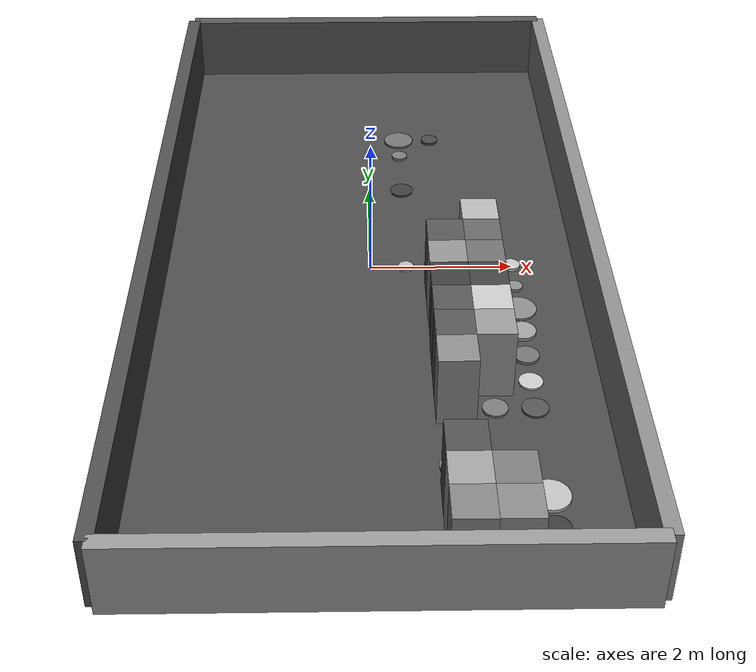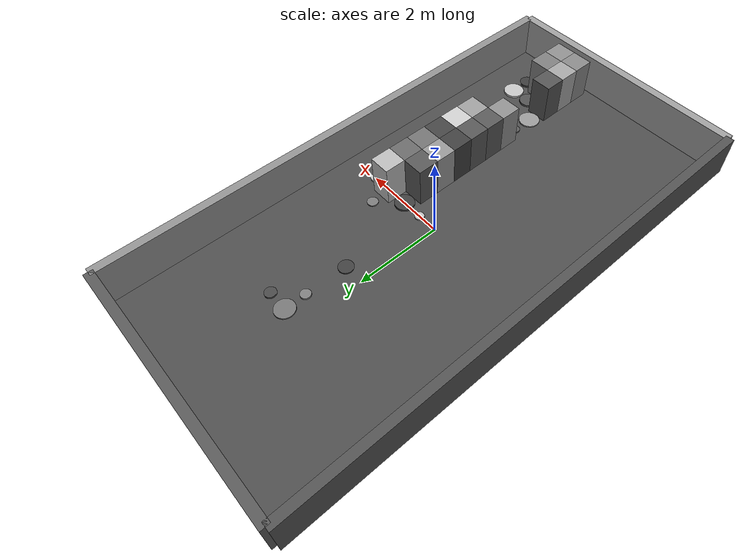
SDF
<sdf version="1.7">
 <world name="default">
  <model name="ground_plane">
   <static>true</static>
   <link name="link">
    <pose>0.0 0.0 -0.05 0 0 0</pose>
    <visual name="visual">
     <material>
      <ambient>0.297790706906946 0.297790706906946 0.297790706906946 1</ambient>
      <diffuse>0.297790706906946 0.297790706906946 0.297790706906946 1</diffuse>
     </material>
     <geometry><box><size>6.0 12.0 0.1</size></box></geometry>
    </visual>
    <collision name="collision">
     <geometry><box><size>6.0 12.0 0.1</size></box></geometry>
     <surface>
      <friction><ode><mu>100</mu><mu2>50.0</mu2><slip1>0.0</slip1><slip2>0.0</slip2></ode></friction>
      <contact><ode><kp>10000.0</kp><kd>100.0</kd></ode></contact>
     </surface>
    </collision>
   </link>
  </model>
  <model name="pn_pillar_40">
   <static>true</static>
   <link name="link">
    <pose>0.5 0.0 0.01634392656753327 0 0 0</pose>
    <visual name="visual">
     <material>
      <ambient>0.7268057595224244 0.7268057595224244 0.7268057595224244 1</ambient>
      <diffuse>0.7268057595224244 0.7268057595224244 0.7268057595224244 1</diffuse>
     </material>
     <geometry>
      <cylinder><radius>0.10868877497412814</radius><length>0.03268785313506654</length></cylinder>
     </geometry>
    </visual>
    <collision name="collision">
     <geometry>
      <cylinder><radius>0.10868877497412814</radius><length>0.03268785313506654</length></cylinder>
     </geometry>
     <surface>
      <friction><ode><mu>100</mu><mu2>50.0</mu2><slip1>0.0</slip1><slip2>0.0</slip2></ode></friction>
      <contact><ode><kp>10000.0</kp><kd>100.0</kd></ode></contact>
     </surface>
    </collision>
   </link>
  </model>
  <model name="pn_pillar_41">
   <static>true</static>
   <link name="link">
    <pose>0.5 2.0 0.013570668150848486 0 0 0</pose>
    <visual name="visual">
     <material>
      <ambient>0.24152751108103018 0.24152751108103018 0.24152751108103018 1</ambient>
      <diffuse>0.24152751108103018 0.24152751108103018 0.24152751108103018 1</diffuse>
     </material>
     <geometry>
      <cylinder><radius>0.17289856949749205</radius><length>0.02714133630169697</length></cylinder>
     </geometry>
    </visual>
    <collision name="collision">
     <geometry>
      <cylinder><radius>0.17289856949749205</radius><length>0.02714133630169697</length></cylinder>
     </geometry>
     <surface>
      <friction><ode><mu>100</mu><mu2>50.0</mu2><slip1>0.0</slip1><slip2>0.0</slip2></ode></friction>
      <contact><ode><kp>10000.0</kp><kd>100.0</kd></ode></contact>
     </surface>
    </collision>
   </link>
  </model>
  <model name="pn_pillar_42">
   <static>true</static>
   <link name="link">
    <pose>0.5 3.0 0.022072930366337347 0 0 0</pose>
    <visual name="visual">
     <material>
      <ambient>0.48516942685923886 0.48516942685923886 0.48516942685923886 1</ambient>
      <diffuse>0.48516942685923886 0.48516942685923886 0.48516942685923886 1</diffuse>
     </material>
     <geometry>
      <cylinder><radius>0.11925871967496443</radius><length>0.044145860732674694</length></cylinder>
     </geometry>
    </visual>
    <collision name="collision">
     <geometry>
      <cylinder><radius>0.11925871967496443</radius><length>0.044145860732674694</length></cylinder>
     </geometry>
     <surface>
      <friction><ode><mu>100</mu><mu2>50.0</mu2><slip1>0.0</slip1><slip2>0.0</slip2></ode></friction>
      <contact><ode><kp>10000.0</kp><kd>100.0</kd></ode></contact>
     </surface>
    </collision>
   </link>
  </model>
  <model name="pn_pillar_43">
   <static>true</static>
   <link name="link">
    <pose>0.5 3.5 0.01581320786175074 0 0 0</pose>
    <visual name="visual">
     <material>
      <ambient>0.4538827641205322 0.4538827641205322 0.4538827641205322 1</ambient>
      <diffuse>0.4538827641205322 0.4538827641205322 0.4538827641205322 1</diffuse>
     </material>
     <geometry>
      <cylinder><radius>0.23086495616278863</radius><length>0.03162641572350148</length></cylinder>
     </geometry>
    </visual>
    <collision name="collision">
     <geometry>
      <cylinder><radius>0.23086495616278863</radius><length>0.03162641572350148</length></cylinder>
     </geometry>
     <surface>
      <friction><ode><mu>100</mu><mu2>50.0</mu2><slip1>0.0</slip1><slip2>0.0</slip2></ode></friction>
      <contact><ode><kp>10000.0</kp><kd>100.0</kd></ode></contact>
     </surface>
    </collision>
   </link>
  </model>
  <model name="pn_wall_44">
   <static>true</static>
   <link name="link">
    <pose>1.0 -5.5 0.5 0 0 0</pose>
    <visual name="visual">
     <material>
      <ambient>0.523577653267675 0.523577653267675 0.523577653267675 1</ambient>
      <diffuse>0.523577653267675 0.523577653267675 0.523577653267675 1</diffuse>
     </material>
     <geometry><box><size>0.5 0.5 1.0</size></box></geometry>
    </visual>
    <collision name="collision">
     <geometry><box><size>0.5 0.5 1.0</size></box></geometry>
     <surface>
      <friction><ode><mu>100</mu><mu2>50.0</mu2><slip1>0.0</slip1><slip2>0.0</slip2></ode></friction>
      <contact><ode><kp>10000.0</kp><kd>100.0</kd></ode></contact>
     </surface>
    </collision>
   </link>
  </model>
  <model name="pn_wall_45">
   <static>true</static>
   <link name="link">
    <pose>1.0 -5.0 0.5 0 0 0</pose>
    <visual name="visual">
     <material>
      <ambient>0.6379586414539857 0.6379586414539857 0.6379586414539857 1</ambient>
      <diffuse>0.6379586414539857 0.6379586414539857 0.6379586414539857 1</diffuse>
     </material>
     <geometry><box><size>0.5 0.5 1.0</size></box></geometry>
    </visual>
    <collision name="collision">
     <geometry><box><size>0.5 0.5 1.0</size></box></geometry>
     <surface>
      <friction><ode><mu>100</mu><mu2>50.0</mu2><slip1>0.0</slip1><slip2>0.0</slip2></ode></friction>
      <contact><ode><kp>10000.0</kp><kd>100.0</kd></ode></contact>
     </surface>
    </collision>
   </link>
  </model>
  <model name="pn_wall_46">
   <static>true</static>
   <link name="link">
    <pose>1.0 -4.5 0.5 0 0 0</pose>
    <visual name="visual">
     <material>
      <ambient>0.3206906380338176 0.3206906380338176 0.3206906380338176 1</ambient>
      <diffuse>0.3206906380338176 0.3206906380338176 0.3206906380338176 1</diffuse>
     </material>
     <geometry><box><size>0.5 0.5 1.0</size></box></geometry>
    </visual>
    <collision name="collision">
     <geometry><box><size>0.5 0.5 1.0</size></box></geometry>
     <surface>
      <friction><ode><mu>100</mu><mu2>50.0</mu2><slip1>0.0</slip1><slip2>0.0</slip2></ode></friction>
      <contact><ode><kp>10000.0</kp><kd>100.0</kd></ode></contact>
     </surface>
    </collision>
   </link>
  </model>
  <model name="pn_pillar_47">
   <static>true</static>
   <link name="link">
    <pose>1.0 -4.0 0.01639645364126119 0 0 0</pose>
    <visual name="visual">
     <material>
      <ambient>0.5899268345836721 0.5899268345836721 0.5899268345836721 1</ambient>
      <diffuse>0.5899268345836721 0.5899268345836721 0.5899268345836721 1</diffuse>
     </material>
     <geometry>
      <cylinder><radius>0.2492724034991342</radius><length>0.03279290728252238</length></cylinder>
     </geometry>
    </visual>
    <collision name="collision">
     <geometry>
      <cylinder><radius>0.2492724034991342</radius><length>0.03279290728252238</length></cylinder>
     </geometry>
     <surface>
      <friction><ode><mu>100</mu><mu2>50.0</mu2><slip1>0.0</slip1><slip2>0.0</slip2></ode></friction>
      <contact><ode><kp>10000.0</kp><kd>100.0</kd></ode></contact>
     </surface>
    </collision>
   </link>
  </model>
  <model name="pn_pillar_48">
   <static>true</static>
   <link name="link">
    <pose>1.0 -3.5 0.018969698012944885 0 0 0</pose>
    <visual name="visual">
     <material>
      <ambient>0.33481840221893444 0.33481840221893444 0.33481840221893444 1</ambient>
      <diffuse>0.33481840221893444 0.33481840221893444 0.33481840221893444 1</diffuse>
     </material>
     <geometry>
      <cylinder><radius>0.11815062938023986</radius><length>0.03793939602588977</length></cylinder>
     </geometry>
    </visual>
    <collision name="collision">
     <geometry>
      <cylinder><radius>0.11815062938023986</radius><length>0.03793939602588977</length></cylinder>
     </geometry>
     <surface>
      <friction><ode><mu>100</mu><mu2>50.0</mu2><slip1>0.0</slip1><slip2>0.0</slip2></ode></friction>
      <contact><ode><kp>10000.0</kp><kd>100.0</kd></ode></contact>
     </surface>
    </collision>
   </link>
  </model>
  <model name="pn_wall_49">
   <static>true</static>
   <link name="link">
    <pose>1.0 -3.0 0.5 0 0 0</pose>
    <visual name="visual">
     <material>
      <ambient>0.5529852310743401 0.5529852310743401 0.5529852310743401 1</ambient>
      <diffuse>0.5529852310743401 0.5529852310743401 0.5529852310743401 1</diffuse>
     </material>
     <geometry><box><size>0.5 0.5 1.0</size></box></geometry>
    </visual>
    <collision name="collision">
     <geometry><box><size>0.5 0.5 1.0</size></box></geometry>
     <surface>
      <friction><ode><mu>100</mu><mu2>50.0</mu2><slip1>0.0</slip1><slip2>0.0</slip2></ode></friction>
      <contact><ode><kp>10000.0</kp><kd>100.0</kd></ode></contact>
     </surface>
    </collision>
   </link>
  </model>
  <model name="pn_wall_50">
   <static>true</static>
   <link name="link">
    <pose>1.0 -2.5 0.5 0 0 0</pose>
    <visual name="visual">
     <material>
      <ambient>0.3380688395579462 0.3380688395579462 0.3380688395579462 1</ambient>
      <diffuse>0.3380688395579462 0.3380688395579462 0.3380688395579462 1</diffuse>
     </material>
     <geometry><box><size>0.5 0.5 1.0</size></box></geometry>
    </visual>
    <collision name="collision">
     <geometry><box><size>0.5 0.5 1.0</size></box></geometry>
     <surface>
      <friction><ode><mu>100</mu><mu2>50.0</mu2><slip1>0.0</slip1><slip2>0.0</slip2></ode></friction>
      <contact><ode><kp>10000.0</kp><kd>100.0</kd></ode></contact>
     </surface>
    </collision>
   </link>
  </model>
  <model name="pn_wall_51">
   <static>true</static>
   <link name="link">
    <pose>1.0 -2.0 0.5 0 0 0</pose>
    <visual name="visual">
     <material>
      <ambient>0.33213043067093573 0.33213043067093573 0.33213043067093573 1</ambient>
      <diffuse>0.33213043067093573 0.33213043067093573 0.33213043067093573 1</diffuse>
     </material>
     <geometry><box><size>0.5 0.5 1.0</size></box></geometry>
    </visual>
    <collision name="collision">
     <geometry><box><size>0.5 0.5 1.0</size></box></geometry>
     <surface>
      <friction><ode><mu>100</mu><mu2>50.0</mu2><slip1>0.0</slip1><slip2>0.0</slip2></ode></friction>
      <contact><ode><kp>10000.0</kp><kd>100.0</kd></ode></contact>
     </surface>
    </collision>
   </link>
  </model>
  <model name="pn_wall_52">
   <static>true</static>
   <link name="link">
    <pose>1.0 -1.5 0.5 0 0 0</pose>
    <visual name="visual">
     <material>
      <ambient>0.24259585160541955 0.24259585160541955 0.24259585160541955 1</ambient>
      <diffuse>0.24259585160541955 0.24259585160541955 0.24259585160541955 1</diffuse>
     </material>
     <geometry><box><size>0.5 0.5 1.0</size></box></geometry>
    </visual>
    <collision name="collision">
     <geometry><box><size>0.5 0.5 1.0</size></box></geometry>
     <surface>
      <friction><ode><mu>100</mu><mu2>50.0</mu2><slip1>0.0</slip1><slip2>0.0</slip2></ode></friction>
      <contact><ode><kp>10000.0</kp><kd>100.0</kd></ode></contact>
     </surface>
    </collision>
   </link>
  </model>
  <model name="pn_wall_53">
   <static>true</static>
   <link name="link">
    <pose>1.0 -1.0 0.5 0 0 0</pose>
    <visual name="visual">
     <material>
      <ambient>0.5786617743620595 0.5786617743620595 0.5786617743620595 1</ambient>
      <diffuse>0.5786617743620595 0.5786617743620595 0.5786617743620595 1</diffuse>
     </material>
     <geometry><box><size>0.5 0.5 1.0</size></box></geometry>
    </visual>
    <collision name="collision">
     <geometry><box><size>0.5 0.5 1.0</size></box></geometry>
     <surface>
      <friction><ode><mu>100</mu><mu2>50.0</mu2><slip1>0.0</slip1><slip2>0.0</slip2></ode></friction>
      <contact><ode><kp>10000.0</kp><kd>100.0</kd></ode></contact>
     </surface>
    </collision>
   </link>
  </model>
  <model name="pn_wall_54">
   <static>true</static>
   <link name="link">
    <pose>1.0 -0.5 0.5 0 0 0</pose>
    <visual name="visual">
     <material>
      <ambient>0.33736507028669266 0.33736507028669266 0.33736507028669266 1</ambient>
      <diffuse>0.33736507028669266 0.33736507028669266 0.33736507028669266 1</diffuse>
     </material>
     <geometry><box><size>0.5 0.5 1.0</size></box></geometry>
    </visual>
    <collision name="collision">
     <geometry><box><size>0.5 0.5 1.0</size></box></geometry>
     <surface>
      <friction><ode><mu>100</mu><mu2>50.0</mu2><slip1>0.0</slip1><slip2>0.0</slip2></ode></friction>
      <contact><ode><kp>10000.0</kp><kd>100.0</kd></ode></contact>
     </surface>
    </collision>
   </link>
  </model>
  <model name="pn_pillar_55">
   <static>true</static>
   <link name="link">
    <pose>1.0 0.0 0.0238177501625766 0 0 0</pose>
    <visual name="visual">
     <material>
      <ambient>0.2425144099331921 0.2425144099331921 0.2425144099331921 1</ambient>
      <diffuse>0.2425144099331921 0.2425144099331921 0.2425144099331921 1</diffuse>
     </material>
     <geometry>
      <cylinder><radius>0.22894531003806198</radius><length>0.0476355003251532</length></cylinder>
     </geometry>
    </visual>
    <collision name="collision">
     <geometry>
      <cylinder><radius>0.22894531003806198</radius><length>0.0476355003251532</length></cylinder>
     </geometry>
     <surface>
      <friction><ode><mu>100</mu><mu2>50.0</mu2><slip1>0.0</slip1><slip2>0.0</slip2></ode></friction>
      <contact><ode><kp>10000.0</kp><kd>100.0</kd></ode></contact>
     </surface>
    </collision>
   </link>
  </model>
  <model name="pn_pillar_56">
   <static>true</static>
   <link name="link">
    <pose>1.0 3.5 0.020862222228703507 0 0 0</pose>
    <visual name="visual">
     <material>
      <ambient>0.27938710923501503 0.27938710923501503 0.27938710923501503 1</ambient>
      <diffuse>0.27938710923501503 0.27938710923501503 0.27938710923501503 1</diffuse>
     </material>
     <geometry>
      <cylinder><radius>0.13213552110556578</radius><length>0.041724444457407014</length></cylinder>
     </geometry>
    </visual>
    <collision name="collision">
     <geometry>
      <cylinder><radius>0.13213552110556578</radius><length>0.041724444457407014</length></cylinder>
     </geometry>
     <surface>
      <friction><ode><mu>100</mu><mu2>50.0</mu2><slip1>0.0</slip1><slip2>0.0</slip2></ode></friction>
      <contact><ode><kp>10000.0</kp><kd>100.0</kd></ode></contact>
     </surface>
    </collision>
   </link>
  </model>
  <model name="pn_wall_57">
   <static>true</static>
   <link name="link">
    <pose>1.5 -5.5 0.5 0 0 0</pose>
    <visual name="visual">
     <material>
      <ambient>0.5426258559951708 0.5426258559951708 0.5426258559951708 1</ambient>
      <diffuse>0.5426258559951708 0.5426258559951708 0.5426258559951708 1</diffuse>
     </material>
     <geometry><box><size>0.5 0.5 1.0</size></box></geometry>
    </visual>
    <collision name="collision">
     <geometry><box><size>0.5 0.5 1.0</size></box></geometry>
     <surface>
      <friction><ode><mu>100</mu><mu2>50.0</mu2><slip1>0.0</slip1><slip2>0.0</slip2></ode></friction>
      <contact><ode><kp>10000.0</kp><kd>100.0</kd></ode></contact>
     </surface>
    </collision>
   </link>
  </model>
  <model name="pn_wall_58">
   <static>true</static>
   <link name="link">
    <pose>1.5 -5.0 0.5 0 0 0</pose>
    <visual name="visual">
     <material>
      <ambient>0.48360261578707653 0.48360261578707653 0.48360261578707653 1</ambient>
      <diffuse>0.48360261578707653 0.48360261578707653 0.48360261578707653 1</diffuse>
     </material>
     <geometry><box><size>0.5 0.5 1.0</size></box></geometry>
    </visual>
    <collision name="collision">
     <geometry><box><size>0.5 0.5 1.0</size></box></geometry>
     <surface>
      <friction><ode><mu>100</mu><mu2>50.0</mu2><slip1>0.0</slip1><slip2>0.0</slip2></ode></friction>
      <contact><ode><kp>10000.0</kp><kd>100.0</kd></ode></contact>
     </surface>
    </collision>
   </link>
  </model>
  <model name="pn_pillar_59">
   <static>true</static>
   <link name="link">
    <pose>1.5 -4.5 0.022307742803634418 0 0 0</pose>
    <visual name="visual">
     <material>
      <ambient>0.3142459486171266 0.3142459486171266 0.3142459486171266 1</ambient>
      <diffuse>0.3142459486171266 0.3142459486171266 0.3142459486171266 1</diffuse>
     </material>
     <geometry>
      <cylinder><radius>0.2211245496649965</radius><length>0.044615485607268836</length></cylinder>
     </geometry>
    </visual>
    <collision name="collision">
     <geometry>
      <cylinder><radius>0.2211245496649965</radius><length>0.044615485607268836</length></cylinder>
     </geometry>
     <surface>
      <friction><ode><mu>100</mu><mu2>50.0</mu2><slip1>0.0</slip1><slip2>0.0</slip2></ode></friction>
      <contact><ode><kp>10000.0</kp><kd>100.0</kd></ode></contact>
     </surface>
    </collision>
   </link>
  </model>
  <model name="pn_pillar_60">
   <static>true</static>
   <link name="link">
    <pose>1.5 -3.0 0.01788813978007972 0 0 0</pose>
    <visual name="visual">
     <material>
      <ambient>0.480214800822005 0.480214800822005 0.480214800822005 1</ambient>
      <diffuse>0.480214800822005 0.480214800822005 0.480214800822005 1</diffuse>
     </material>
     <geometry>
      <cylinder><radius>0.1635367934529881</radius><length>0.03577627956015944</length></cylinder>
     </geometry>
    </visual>
    <collision name="collision">
     <geometry>
      <cylinder><radius>0.1635367934529881</radius><length>0.03577627956015944</length></cylinder>
     </geometry>
     <surface>
      <friction><ode><mu>100</mu><mu2>50.0</mu2><slip1>0.0</slip1><slip2>0.0</slip2></ode></friction>
      <contact><ode><kp>10000.0</kp><kd>100.0</kd></ode></contact>
     </surface>
    </collision>
   </link>
  </model>
  <model name="pn_wall_61">
   <static>true</static>
   <link name="link">
    <pose>1.5 -2.5 0.5 0 0 0</pose>
    <visual name="visual">
     <material>
      <ambient>0.604018728375981 0.604018728375981 0.604018728375981 1</ambient>
      <diffuse>0.604018728375981 0.604018728375981 0.604018728375981 1</diffuse>
     </material>
     <geometry><box><size>0.5 0.5 1.0</size></box></geometry>
    </visual>
    <collision name="collision">
     <geometry><box><size>0.5 0.5 1.0</size></box></geometry>
     <surface>
      <friction><ode><mu>100</mu><mu2>50.0</mu2><slip1>0.0</slip1><slip2>0.0</slip2></ode></friction>
      <contact><ode><kp>10000.0</kp><kd>100.0</kd></ode></contact>
     </surface>
    </collision>
   </link>
  </model>
  <model name="pn_wall_62">
   <static>true</static>
   <link name="link">
    <pose>1.5 -2.0 0.5 0 0 0</pose>
    <visual name="visual">
     <material>
      <ambient>0.7904991268195798 0.7904991268195798 0.7904991268195798 1</ambient>
      <diffuse>0.7904991268195798 0.7904991268195798 0.7904991268195798 1</diffuse>
     </material>
     <geometry><box><size>0.5 0.5 1.0</size></box></geometry>
    </visual>
    <collision name="collision">
     <geometry><box><size>0.5 0.5 1.0</size></box></geometry>
     <surface>
      <friction><ode><mu>100</mu><mu2>50.0</mu2><slip1>0.0</slip1><slip2>0.0</slip2></ode></friction>
      <contact><ode><kp>10000.0</kp><kd>100.0</kd></ode></contact>
     </surface>
    </collision>
   </link>
  </model>
  <model name="pn_wall_63">
   <static>true</static>
   <link name="link">
    <pose>1.5 -1.5 0.5 0 0 0</pose>
    <visual name="visual">
     <material>
      <ambient>0.25905072269117535 0.25905072269117535 0.25905072269117535 1</ambient>
      <diffuse>0.25905072269117535 0.25905072269117535 0.25905072269117535 1</diffuse>
     </material>
     <geometry><box><size>0.5 0.5 1.0</size></box></geometry>
    </visual>
    <collision name="collision">
     <geometry><box><size>0.5 0.5 1.0</size></box></geometry>
     <surface>
      <friction><ode><mu>100</mu><mu2>50.0</mu2><slip1>0.0</slip1><slip2>0.0</slip2></ode></friction>
      <contact><ode><kp>10000.0</kp><kd>100.0</kd></ode></contact>
     </surface>
    </collision>
   </link>
  </model>
  <model name="pn_wall_64">
   <static>true</static>
   <link name="link">
    <pose>1.5 -1.0 0.5 0 0 0</pose>
    <visual name="visual">
     <material>
      <ambient>0.4415727692613613 0.4415727692613613 0.4415727692613613 1</ambient>
      <diffuse>0.4415727692613613 0.4415727692613613 0.4415727692613613 1</diffuse>
     </material>
     <geometry><box><size>0.5 0.5 1.0</size></box></geometry>
    </visual>
    <collision name="collision">
     <geometry><box><size>0.5 0.5 1.0</size></box></geometry>
     <surface>
      <friction><ode><mu>100</mu><mu2>50.0</mu2><slip1>0.0</slip1><slip2>0.0</slip2></ode></friction>
      <contact><ode><kp>10000.0</kp><kd>100.0</kd></ode></contact>
     </surface>
    </collision>
   </link>
  </model>
  <model name="pn_wall_65">
   <static>true</static>
   <link name="link">
    <pose>1.5 -0.5 0.5 0 0 0</pose>
    <visual name="visual">
     <material>
      <ambient>0.4035815632369779 0.4035815632369779 0.4035815632369779 1</ambient>
      <diffuse>0.4035815632369779 0.4035815632369779 0.4035815632369779 1</diffuse>
     </material>
     <geometry><box><size>0.5 0.5 1.0</size></box></geometry>
    </visual>
    <collision name="collision">
     <geometry><box><size>0.5 0.5 1.0</size></box></geometry>
     <surface>
      <friction><ode><mu>100</mu><mu2>50.0</mu2><slip1>0.0</slip1><slip2>0.0</slip2></ode></friction>
      <contact><ode><kp>10000.0</kp><kd>100.0</kd></ode></contact>
     </surface>
    </collision>
   </link>
  </model>
  <model name="pn_wall_66">
   <static>true</static>
   <link name="link">
    <pose>1.5 0.0 0.5 0 0 0</pose>
    <visual name="visual">
     <material>
      <ambient>0.7170035218116748 0.7170035218116748 0.7170035218116748 1</ambient>
      <diffuse>0.7170035218116748 0.7170035218116748 0.7170035218116748 1</diffuse>
     </material>
     <geometry><box><size>0.5 0.5 1.0</size></box></geometry>
    </visual>
    <collision name="collision">
     <geometry><box><size>0.5 0.5 1.0</size></box></geometry>
     <surface>
      <friction><ode><mu>100</mu><mu2>50.0</mu2><slip1>0.0</slip1><slip2>0.0</slip2></ode></friction>
      <contact><ode><kp>10000.0</kp><kd>100.0</kd></ode></contact>
     </surface>
    </collision>
   </link>
  </model>
  <model name="pn_pillar_67">
   <static>true</static>
   <link name="link">
    <pose>1.5 0.5 0.01560820417400357 0 0 0</pose>
    <visual name="visual">
     <material>
      <ambient>0.46916812869987917 0.46916812869987917 0.46916812869987917 1</ambient>
      <diffuse>0.46916812869987917 0.46916812869987917 0.46916812869987917 1</diffuse>
     </material>
     <geometry>
      <cylinder><radius>0.12853133626612173</radius><length>0.03121640834800714</length></cylinder>
     </geometry>
    </visual>
    <collision name="collision">
     <geometry>
      <cylinder><radius>0.12853133626612173</radius><length>0.03121640834800714</length></cylinder>
     </geometry>
     <surface>
      <friction><ode><mu>100</mu><mu2>50.0</mu2><slip1>0.0</slip1><slip2>0.0</slip2></ode></friction>
      <contact><ode><kp>10000.0</kp><kd>100.0</kd></ode></contact>
     </surface>
    </collision>
   </link>
  </model>
  <model name="pn_pillar_68">
   <static>true</static>
   <link name="link">
    <pose>2.0 -5.5 0.015981814308336756 0 0 0</pose>
    <visual name="visual">
     <material>
      <ambient>0.7539593595656078 0.7539593595656078 0.7539593595656078 1</ambient>
      <diffuse>0.7539593595656078 0.7539593595656078 0.7539593595656078 1</diffuse>
     </material>
     <geometry>
      <cylinder><radius>0.13747096718231508</radius><length>0.03196362861667351</length></cylinder>
     </geometry>
    </visual>
    <collision name="collision">
     <geometry>
      <cylinder><radius>0.13747096718231508</radius><length>0.03196362861667351</length></cylinder>
     </geometry>
     <surface>
      <friction><ode><mu>100</mu><mu2>50.0</mu2><slip1>0.0</slip1><slip2>0.0</slip2></ode></friction>
      <contact><ode><kp>10000.0</kp><kd>100.0</kd></ode></contact>
     </surface>
    </collision>
   </link>
  </model>
  <model name="pn_pillar_69">
   <static>true</static>
   <link name="link">
    <pose>2.0 -5.0 0.023266863809522885 0 0 0</pose>
    <visual name="visual">
     <material>
      <ambient>0.23035299771492876 0.23035299771492876 0.23035299771492876 1</ambient>
      <diffuse>0.23035299771492876 0.23035299771492876 0.23035299771492876 1</diffuse>
     </material>
     <geometry>
      <cylinder><radius>0.18254879686747721</radius><length>0.04653372761904577</length></cylinder>
     </geometry>
    </visual>
    <collision name="collision">
     <geometry>
      <cylinder><radius>0.18254879686747721</radius><length>0.04653372761904577</length></cylinder>
     </geometry>
     <surface>
      <friction><ode><mu>100</mu><mu2>50.0</mu2><slip1>0.0</slip1><slip2>0.0</slip2></ode></friction>
      <contact><ode><kp>10000.0</kp><kd>100.0</kd></ode></contact>
     </surface>
    </collision>
   </link>
  </model>
  <model name="pn_pillar_70">
   <static>true</static>
   <link name="link">
    <pose>2.0 -4.5 0.0229503448134994 0 0 0</pose>
    <visual name="visual">
     <material>
      <ambient>0.7558201898048766 0.7558201898048766 0.7558201898048766 1</ambient>
      <diffuse>0.7558201898048766 0.7558201898048766 0.7558201898048766 1</diffuse>
     </material>
     <geometry>
      <cylinder><radius>0.2453494385927127</radius><length>0.0459006896269988</length></cylinder>
     </geometry>
    </visual>
    <collision name="collision">
     <geometry>
      <cylinder><radius>0.2453494385927127</radius><length>0.0459006896269988</length></cylinder>
     </geometry>
     <surface>
      <friction><ode><mu>100</mu><mu2>50.0</mu2><slip1>0.0</slip1><slip2>0.0</slip2></ode></friction>
      <contact><ode><kp>10000.0</kp><kd>100.0</kd></ode></contact>
     </surface>
    </collision>
   </link>
  </model>
  <model name="pn_pillar_71">
   <static>true</static>
   <link name="link">
    <pose>2.0 -3.0 0.014578888882548926 0 0 0</pose>
    <visual name="visual">
     <material>
      <ambient>0.328248379519509 0.328248379519509 0.328248379519509 1</ambient>
      <diffuse>0.328248379519509 0.328248379519509 0.328248379519509 1</diffuse>
     </material>
     <geometry>
      <cylinder><radius>0.17284616881760778</radius><length>0.029157777765097852</length></cylinder>
     </geometry>
    </visual>
    <collision name="collision">
     <geometry>
      <cylinder><radius>0.17284616881760778</radius><length>0.029157777765097852</length></cylinder>
     </geometry>
     <surface>
      <friction><ode><mu>100</mu><mu2>50.0</mu2><slip1>0.0</slip1><slip2>0.0</slip2></ode></friction>
      <contact><ode><kp>10000.0</kp><kd>100.0</kd></ode></contact>
     </surface>
    </collision>
   </link>
  </model>
  <model name="pn_pillar_72">
   <static>true</static>
   <link name="link">
    <pose>2.0 -2.5 0.013232942499652237 0 0 0</pose>
    <visual name="visual">
     <material>
      <ambient>0.7911853062678356 0.7911853062678356 0.7911853062678356 1</ambient>
      <diffuse>0.7911853062678356 0.7911853062678356 0.7911853062678356 1</diffuse>
     </material>
     <geometry>
      <cylinder><radius>0.15684596784653743</radius><length>0.026465884999304475</length></cylinder>
     </geometry>
    </visual>
    <collision name="collision">
     <geometry>
      <cylinder><radius>0.15684596784653743</radius><length>0.026465884999304475</length></cylinder>
     </geometry>
     <surface>
      <friction><ode><mu>100</mu><mu2>50.0</mu2><slip1>0.0</slip1><slip2>0.0</slip2></ode></friction>
      <contact><ode><kp>10000.0</kp><kd>100.0</kd></ode></contact>
     </surface>
    </collision>
   </link>
  </model>
  <model name="pn_pillar_73">
   <static>true</static>
   <link name="link">
    <pose>2.0 -2.0 0.022300882524357118 0 0 0</pose>
    <visual name="visual">
     <material>
      <ambient>0.4538044915940978 0.4538044915940978 0.4538044915940978 1</ambient>
      <diffuse>0.4538044915940978 0.4538044915940978 0.4538044915940978 1</diffuse>
     </material>
     <geometry>
      <cylinder><radius>0.1682512551008715</radius><length>0.044601765048714236</length></cylinder>
     </geometry>
    </visual>
    <collision name="collision">
     <geometry>
      <cylinder><radius>0.1682512551008715</radius><length>0.044601765048714236</length></cylinder>
     </geometry>
     <surface>
      <friction><ode><mu>100</mu><mu2>50.0</mu2><slip1>0.0</slip1><slip2>0.0</slip2></ode></friction>
      <contact><ode><kp>10000.0</kp><kd>100.0</kd></ode></contact>
     </surface>
    </collision>
   </link>
  </model>
  <model name="pn_pillar_74">
   <static>true</static>
   <link name="link">
    <pose>2.0 -1.5 0.024942783618658926 0 0 0</pose>
    <visual name="visual">
     <material>
      <ambient>0.6310449651777956 0.6310449651777956 0.6310449651777956 1</ambient>
      <diffuse>0.6310449651777956 0.6310449651777956 0.6310449651777956 1</diffuse>
     </material>
     <geometry>
      <cylinder><radius>0.18336524851084274</radius><length>0.04988556723731785</length></cylinder>
     </geometry>
    </visual>
    <collision name="collision">
     <geometry>
      <cylinder><radius>0.18336524851084274</radius><length>0.04988556723731785</length></cylinder>
     </geometry>
     <surface>
      <friction><ode><mu>100</mu><mu2>50.0</mu2><slip1>0.0</slip1><slip2>0.0</slip2></ode></friction>
      <contact><ode><kp>10000.0</kp><kd>100.0</kd></ode></contact>
     </surface>
    </collision>
   </link>
  </model>
  <model name="pn_pillar_75">
   <static>true</static>
   <link name="link">
    <pose>2.0 -1.0 0.016208847818682055 0 0 0</pose>
    <visual name="visual">
     <material>
      <ambient>0.5475081744897539 0.5475081744897539 0.5475081744897539 1</ambient>
      <diffuse>0.5475081744897539 0.5475081744897539 0.5475081744897539 1</diffuse>
     </material>
     <geometry>
      <cylinder><radius>0.24530640474537382</radius><length>0.03241769563736411</length></cylinder>
     </geometry>
    </visual>
    <collision name="collision">
     <geometry>
      <cylinder><radius>0.24530640474537382</radius><length>0.03241769563736411</length></cylinder>
     </geometry>
     <surface>
      <friction><ode><mu>100</mu><mu2>50.0</mu2><slip1>0.0</slip1><slip2>0.0</slip2></ode></friction>
      <contact><ode><kp>10000.0</kp><kd>100.0</kd></ode></contact>
     </surface>
    </collision>
   </link>
  </model>
  <model name="pn_pillar_76">
   <static>true</static>
   <link name="link">
    <pose>2.0 -0.5 0.021849694504738303 0 0 0</pose>
    <visual name="visual">
     <material>
      <ambient>0.5505065566753828 0.5505065566753828 0.5505065566753828 1</ambient>
      <diffuse>0.5505065566753828 0.5505065566753828 0.5505065566753828 1</diffuse>
     </material>
     <geometry>
      <cylinder><radius>0.10857479093612246</radius><length>0.043699389009476605</length></cylinder>
     </geometry>
    </visual>
    <collision name="collision">
     <geometry>
      <cylinder><radius>0.10857479093612246</radius><length>0.043699389009476605</length></cylinder>
     </geometry>
     <surface>
      <friction><ode><mu>100</mu><mu2>50.0</mu2><slip1>0.0</slip1><slip2>0.0</slip2></ode></friction>
      <contact><ode><kp>10000.0</kp><kd>100.0</kd></ode></contact>
     </surface>
    </collision>
   </link>
  </model>
  <model name="pn_pillar_77">
   <static>true</static>
   <link name="link">
    <pose>2.0 0.0 0.023158998650603568 0 0 0</pose>
    <visual name="visual">
     <material>
      <ambient>0.7764673419646704 0.7764673419646704 0.7764673419646704 1</ambient>
      <diffuse>0.7764673419646704 0.7764673419646704 0.7764673419646704 1</diffuse>
     </material>
     <geometry>
      <cylinder><radius>0.1236149091909225</radius><length>0.046317997301207135</length></cylinder>
     </geometry>
    </visual>
    <collision name="collision">
     <geometry>
      <cylinder><radius>0.1236149091909225</radius><length>0.046317997301207135</length></cylinder>
     </geometry>
     <surface>
      <friction><ode><mu>100</mu><mu2>50.0</mu2><slip1>0.0</slip1><slip2>0.0</slip2></ode></friction>
      <contact><ode><kp>10000.0</kp><kd>100.0</kd></ode></contact>
     </surface>
    </collision>
   </link>
  </model>
  <model name="pn_wall_78">
   <static>true</static>
   <link name="link">
    <pose>-3.0 0.0 0.5 0 0 0</pose>
    <visual name="visual">
     <material>
      <ambient>0.31149497658843395 0.31149497658843395 0.31149497658843395 1</ambient>
      <diffuse>0.31149497658843395 0.31149497658843395 0.31149497658843395 1</diffuse>
     </material>
     <geometry><box><size>0.2 12.0 1.0</size></box></geometry>
    </visual>
    <collision name="collision">
     <geometry><box><size>0.2 12.0 1.0</size></box></geometry>
     <surface>
      <friction><ode><mu>100</mu><mu2>50.0</mu2><slip1>0.0</slip1><slip2>0.0</slip2></ode></friction>
      <contact><ode><kp>10000.0</kp><kd>100.0</kd></ode></contact>
     </surface>
    </collision>
   </link>
  </model>
  <model name="pn_wall_79">
   <static>true</static>
   <link name="link">
    <pose>3.0 0.0 0.5 0 0 0</pose>
    <visual name="visual">
     <material>
      <ambient>0.5570210638700166 0.5570210638700166 0.5570210638700166 1</ambient>
      <diffuse>0.5570210638700166 0.5570210638700166 0.5570210638700166 1</diffuse>
     </material>
     <geometry><box><size>0.2 12.0 1.0</size></box></geometry>
    </visual>
    <collision name="collision">
     <geometry><box><size>0.2 12.0 1.0</size></box></geometry>
     <surface>
      <friction><ode><mu>100</mu><mu2>50.0</mu2><slip1>0.0</slip1><slip2>0.0</slip2></ode></friction>
      <contact><ode><kp>10000.0</kp><kd>100.0</kd></ode></contact>
     </surface>
    </collision>
   </link>
  </model>
  <model name="pn_wall_80">
   <static>true</static>
   <link name="link">
    <pose>0.0 -6.0 0.5 0 0 0</pose>
    <visual name="visual">
     <material>
      <ambient>0.6051275321624542 0.6051275321624542 0.6051275321624542 1</ambient>
      <diffuse>0.6051275321624542 0.6051275321624542 0.6051275321624542 1</diffuse>
     </material>
     <geometry><box><size>6.0 0.2 1.0</size></box></geometry>
    </visual>
    <collision name="collision">
     <geometry><box><size>6.0 0.2 1.0</size></box></geometry>
     <surface>
      <friction><ode><mu>100</mu><mu2>50.0</mu2><slip1>0.0</slip1><slip2>0.0</slip2></ode></friction>
      <contact><ode><kp>10000.0</kp><kd>100.0</kd></ode></contact>
     </surface>
    </collision>
   </link>
  </model>
  <model name="pn_wall_81">
   <static>true</static>
   <link name="link">
    <pose>0.0 6.0 0.5 0 0 0</pose>
    <visual name="visual">
     <material>
      <ambient>0.3411223370005587 0.3411223370005587 0.3411223370005587 1</ambient>
      <diffuse>0.3411223370005587 0.3411223370005587 0.3411223370005587 1</diffuse>
     </material>
     <geometry><box><size>6.0 0.2 1.0</size></box></geometry>
    </visual>
    <collision name="collision">
     <geometry><box><size>6.0 0.2 1.0</size></box></geometry>
     <surface>
      <friction><ode><mu>100</mu><mu2>50.0</mu2><slip1>0.0</slip1><slip2>0.0</slip2></ode></friction>
      <contact><ode><kp>10000.0</kp><kd>100.0</kd></ode></contact>
     </surface>
    </collision>
   </link>
  </model>
 </world>
</sdf>
